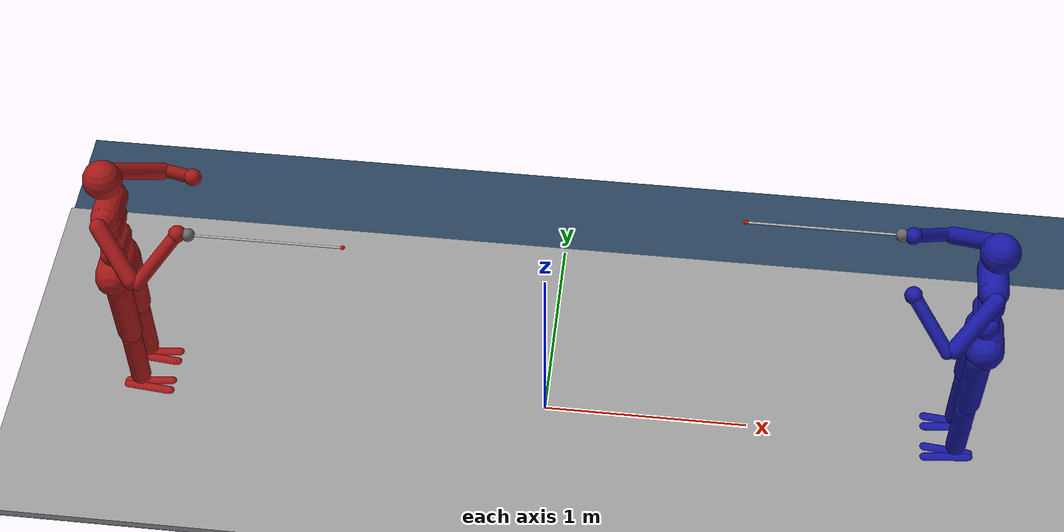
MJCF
<!-- Copyright 2021 DeepMind Technologies Limited. Modified for dual-agent fencing. -->

<mujoco model="Dual_Humanoid_Fencing">
  <option timestep="0.005"/>

  <visual>
    <map force="0.1" zfar="30"/>
    <rgba haze="0.15 0.25 0.35 1"/>
    <global offwidth="2560" offheight="1440" elevation="-20" azimuth="120"/>
  </visual>

  <statistic center="1.5 0 0.7"/> <!-- Center camera view between the two humanoids -->

  <asset>
    <texture type="skybox" builtin="gradient" rgb1=".3 .5 .7" rgb2="0 0 0" width="32" height="512"/>
    <texture name="body_A" type="cube" builtin="flat" mark="cross" width="128" height="128" rgb1="0.8 0.3 0.3" rgb2="0.8 0.3 0.3" markrgb="1 1 1"/> <!-- Red for A -->
    <material name="body_A_mat" texture="body_A" texuniform="true" rgba="0.8 0.3 .3 1"/>
    <texture name="body_B" type="cube" builtin="flat" mark="cross" width="128" height="128" rgb1="0.3 0.3 0.8" rgb2="0.3 0.3 0.8" markrgb="1 1 1"/> <!-- Blue for B -->
    <material name="body_B_mat" texture="body_B" texuniform="true" rgba="0.3 0.3 .8 1"/>

    <texture name="grid" type="2d" builtin="checker" width="512" height="512" rgb1=".1 .2 .3" rgb2=".2 .3 .4"/>
    <material name="grid" texture="grid" texrepeat="1 1" texuniform="true" reflectance=".2"/>
  </asset>

  <default>
    <motor ctrlrange="-1 1" ctrllimited="true"/>
    <!-- Shared shoulder joint settings for both fencers -->
    <default class="shoulder">
      <joint type="hinge" damping="1" stiffness="1" limited="true" range="-120 120"/>
    </default>
    <!-- Default class 'body_A' for Fencer A -->
    <default class="body_A">
      <!-- Fencer A Body Geoms -->
      <!-- Put body geoms in render group 0 to ensure visibility in viewer -->
      <geom type="capsule" condim="1" friction=".7" solimp=".9 .99 .003" solref=".015 1" material="body_A_mat" group="0"/>
      <default class="thigh"><geom size=".06"/></default>
      <default class="shin"><geom fromto="0 0 0 0 0 -.3"  size=".049"/></default>
      <default class="foot">
        <geom size=".027"/>
        <default class="foot1"><geom fromto="-.07 -.01 0 .14 -.03 0"/></default>
        <default class="foot2"><geom fromto="-.07 .01 0 .14  .03 0"/></default>
      </default>
      <default class="arm_upper"><geom size=".04"/></default>
      <default class="arm_lower"><geom size=".031"/></default>
      <default class="hand"><geom type="sphere" size=".04"/></default>
      <!-- Epee Blade: group="2" (for contact detection) -->
      <default class="epee_blade_geom">
        <geom type="capsule" size="0.005" rgba="0.8 0.8 0.8 1" mass="0.05" group="2" condim="6"/>
      </default>
      <default class="epee_guard_geom">
        <geom type="sphere" size="0.03" rgba="0.4 0.4 0.4 1" mass="0.02" group="2"/>
      </default>

      <!-- Joints (Shared joint parameters) -->
      <joint type="hinge" damping=".2" stiffness="1" armature=".01" limited="true" solimplimit="0 .99 .01"/>
      <default class="joint_big">
        <joint damping="5" stiffness="10"/>
        <default class="hip_x"><joint range="-30 10"/></default>
        <default class="hip_z"><joint range="-60 35"/></default>
        <default class="hip_y"><joint axis="0 1 0" range="-150 20"/></default>
        <default class="joint_big_stiff"><joint stiffness="20"/></default>
      </default>
      <default class="knee"><joint pos="0 0 .02" axis="0 -1 0" range="-160 2"/></default>
      <default class="ankle"><joint range="-50 50"/></default>
    </default>

    <!-- Default class 'body_B' for Fencer B -->
    <default class="body_B">
      <!-- Fencer B Body Geoms -->
      <!-- Put body geoms in render group 0 to ensure visibility in viewer -->
      <geom type="capsule" condim="1" friction=".7" solimp=".9 .99 .003" solref=".015 1" material="body_B_mat" group="0"/>
      <default class="thigh_B"><geom size=".06"/></default>
      <default class="shin_B"><geom fromto="0 0 0 0 0 -.3"  size=".049"/></default>
      <default class="foot_B">
        <geom size=".027"/>
        <default class="foot1_B"><geom fromto="-.07 -.01 0 .14 -.03 0"/></default>
        <default class="foot2_B"><geom fromto="-.07 .01 0 .14  .03 0"/></default>
      </default>
      <default class="arm_upper_B"><geom size=".04"/></default>
      <default class="arm_lower_B"><geom size=".031"/></default>
      <default class="hand_B"><geom type="sphere" size=".04"/></default>
      <!-- Epee Blade: group="2" (for contact detection) -->
      <default class="epee_blade_geom_B">
        <geom type="capsule" size="0.005" rgba="0.8 0.8 0.8 1" mass="0.05" group="2" condim="6"/>
      </default>
      <default class="epee_guard_geom_B">
        <geom type="sphere" size="0.03" rgba="0.4 0.4 0.4 1" mass="0.02" group="2"/>
      </default>
    </default>
  </default>

  <worldbody>
    <geom name="floor" size="0 0 .05" type="plane" material="grid" condim="3"/>
    <!-- Visual strip (14m x 2m) centered at origin; non-colliding -->
    <geom name="piste" type="box" size="7 1 0.02" pos="0 0 0.02" rgba="0.6 0.6 0.6 1" contype="0" conaffinity="0"/>
    <light name="spotlight" mode="targetbodycom" target="torso" diffuse=".8 .8 .8" specular="0.3 0.3 0.3" pos="0 -6 4" cutoff="30"/>
    <light name="top" pos="1.5 0 2" mode="trackcom"/>

    <!-- FENCER A (Original Humanoid - uses class="body_A") -->
    <body name="torso" pos="-2 0 1.282" childclass="body_A">
      <camera name="back_A" pos="-3 0 1" xyaxes="0 -1 0 1 0 2" mode="trackcom"/>
      <camera name="side_A" pos="0 -3 1" xyaxes="1 0 0 0 1 2" mode="trackcom"/>
      <freejoint name="root"/>
      <geom name="torso" fromto="0 -.07 0 0 .07 0" size=".07"/>
      <geom name="waist_upper" fromto="-.01 -.06 -.12 -.01 .06 -.12" size=".06"/>
      <body name="head" pos="0 0 .19">
        <geom name="head" type="sphere" size=".09"/>
        <camera name="egocentric_A" pos=".09 0 0" xyaxes="0 -1 0 .1 0 1" fovy="80"/>
      </body>
      <body name="waist_lower" pos="-.01 0 -.26">
        <geom name="waist_lower" fromto="0 -.06 0 0 .06 0" size=".06"/>
        <joint name="abdomen_z" pos="0 0 .065" axis="0 0 1" range="-45 45" class="joint_big_stiff"/>
        <joint name="abdomen_y" pos="0 0 .065" axis="0 1 0" range="-75 30" class="joint_big"/>
        <body name="pelvis" pos="0 0 -.165">
          <joint name="abdomen_x" pos="0 0 .1" axis="1 0 0" range="-35 35" class="joint_big"/>
          <geom name="butt" fromto="-.02 -.07 0 -.02 .07 0" size=".09"/>
          <body name="thigh_right" pos="0 -.1 -.04">
            <joint name="hip_x_right" axis="1 0 0" class="hip_x"/>
            <joint name="hip_z_right" axis="0 0 1" class="hip_z"/>
            <joint name="hip_y_right" class="hip_y"/>
            <geom name="thigh_right" fromto="0 0 0 0 .01 -.34" class="thigh"/>
            <body name="shin_right" pos="0 .01 -.4">
              <joint name="knee_right" class="knee"/>
              <geom name="shin_right" class="shin"/>
              <body name="foot_right" pos="0 0 -.39">
                <joint name="ankle_y_right" pos="0 0 .08" axis="0 1 0" stiffness="6" range="-50 50"/>
                <joint name="ankle_x_right" pos="0 0 .04" stiffness="3" range="-50 50" axis="1 0 .5"/>
                <geom name="foot1_right" class="foot1"/>
                <geom name="foot2_right" class="foot2"/>
              </body>
            </body>
          </body>
          <body name="thigh_left" pos="0 .1 -.04">
            <joint name="hip_x_left" axis="-1 0 0" class="hip_x"/>
            <joint name="hip_z_left" axis="0 0 -1" class="hip_z"/>
            <joint name="hip_y_left" class="hip_y"/>
            <geom name="thigh_left" fromto="0 0 0 0 -.01 -.34" class="thigh"/>
            <body name="shin_left" pos="0 -.01 -.4">
              <joint name="knee_left" class="knee"/>
              <geom name="shin_left" fromto="0 0 0 0 0 -.3" class="shin"/>
              <body name="foot_left" pos="0 0 -.39">
                <joint name="ankle_y_left" pos="0 0 .08" axis="0 1 0" stiffness="6" range="-50 50"/>
                <joint name="ankle_x_left" pos="0 0 .04" stiffness="3" range="-50 50" axis="-1 0 -.5"/>
                <geom name="foot1_left" class="foot1"/>
                <geom name="foot2_left" class="foot2"/>
              </body>
            </body>
          </body>
        </body>
      </body>
      <body name="upper_arm_right" pos="0 -.17 .06">
        <joint name="shoulder1_right" axis="2 1 1"  class="shoulder"/>
        <joint name="shoulder2_right" axis="0 -1 1" class="shoulder"/>
        <geom name="upper_arm_right" fromto="0 0 0 .16 -.16 -.16" class="arm_upper"/>
        <body name="lower_arm_right" pos=".18 -.18 -.18">
          <joint name="elbow_right" axis="0 -1 1" range="-100 50" stiffness="0"/>
          <geom name="lower_arm_right" fromto=".01 .01 .01 .17 .17 .17" class="arm_lower"/>
          <body name="hand_right" pos=".18 .18 .18">
            <geom name="hand_right" zaxis="1 1 1" class="hand"/>
            <!-- Fencing epee (attached to right hand) -->
            <body name="epee" pos="0.05 0 0" quat="1 0 0 0">
              <!-- Blade geometry (group="2" for contact detection) -->
              <geom name="epee_blade" class="epee_blade_geom" fromto="0 0 0 0.7 0 0"/>
              <!-- Guard geometry (group="2") -->
              <geom name="epee_guard" class="epee_guard_geom" pos="0 0 0"/>
              <!-- Add a site at the tip of the blade (for sensing location) -->
              <site name="epee_tip" pos="0.7 0 0" size="0.01" rgba="1 0 0 1"/>
            </body>
          </body>
        </body>
      </body>
      <body name="upper_arm_left" pos="0 .17 .06">
        <joint name="shoulder1_left" axis="-2 1 -1" class="shoulder"/>
        <joint name="shoulder2_left" axis="0 -1 -1"  class="shoulder"/>
        <geom name="upper_arm_left" fromto="0 0 0 .16 .16 -.16" class="arm_upper"/>
        <body name="lower_arm_left" pos=".18 .18 -.18">
          <joint name="elbow_left" axis="0 -1 -1" range="-100 50" stiffness="0"/>
          <geom name="lower_arm_left" fromto=".01 -.01 .01 .17 -.17 .17" class="arm_lower"/>
          <body name="hand_left" pos=".18 -.18 .18">
            <geom name="hand_left" zaxis="1 -1 1" class="hand"/>
          </body>
        </body>
      </body>
    </body>

    <!-- FENCER B (Opponent Humanoid - uses class="body_B") -->
    <!-- Placed 3 units away and rotated 180 degrees (quat="0 0 1 0") -->
    <!-- Rotate 180° about z so Fencer B faces A but stays upright -->
    <body name="torso_B" pos="2 0 1.282" quat="0 0 0 1" childclass="body_B">
      <camera name="back_B" pos="-3 0 1" xyaxes="0 -1 0 1 0 2" mode="trackcom"/>
      <camera name="side_B" pos="0 -3 1" xyaxes="1 0 0 0 1 2" mode="trackcom"/>
      <freejoint name="root_B"/>
      <geom name="torso_B" fromto="0 -.07 0 0 .07 0" size=".07"/>
      <geom name="waist_upper_B" fromto="-.01 -.06 -.12 -.01 .06 -.12" size=".06"/>
      <body name="head_B" pos="0 0 .19">
        <geom name="head_B" type="sphere" size=".09"/>
        <camera name="egocentric_B" pos=".09 0 0" xyaxes="0 -1 0 .1 0 1" fovy="80"/>
      </body>
      <body name="waist_lower_B" pos="-.01 0 -.26">
        <geom name="waist_lower_B" fromto="0 -.06 0 0 .06 0" size=".06"/>
        <joint name="abdomen_z_B" pos="0 0 .065" axis="0 0 1" range="-45 45" class="joint_big_stiff"/>
        <joint name="abdomen_y_B" pos="0 0 .065" axis="0 1 0" range="-75 30" class="joint_big"/>
        <body name="pelvis_B" pos="0 0 -.165">
          <joint name="abdomen_x_B" pos="0 0 .1" axis="1 0 0" range="-35 35" class="joint_big"/>
          <geom name="butt_B" fromto="-.02 -.07 0 -.02 .07 0" size=".09"/>
          <body name="thigh_right_B" pos="0 -.1 -.04">
            <joint name="hip_x_right_B" axis="1 0 0" class="hip_x"/>
            <joint name="hip_z_right_B" axis="0 0 1" class="hip_z"/>
            <joint name="hip_y_right_B" class="hip_y"/>
            <geom name="thigh_right_B" fromto="0 0 0 0 .01 -.34" class="thigh_B"/>
            <body name="shin_right_B" pos="0 .01 -.4">
              <joint name="knee_right_B" class="knee"/>
              <geom name="shin_right_B" class="shin_B"/>
              <body name="foot_right_B" pos="0 0 -.39">
                <joint name="ankle_y_right_B" pos="0 0 .08" axis="0 1 0" stiffness="6" range="-50 50"/>
                <joint name="ankle_x_right_B" pos="0 0 .04" stiffness="3" range="-50 50" axis="1 0 .5"/>
                <geom name="foot1_right_B" class="foot1_B"/>
                <geom name="foot2_right_B" class="foot2_B"/>
              </body>
            </body>
          </body>
          <body name="thigh_left_B" pos="0 .1 -.04">
            <joint name="hip_x_left_B" axis="-1 0 0" class="hip_x"/>
            <joint name="hip_z_left_B" axis="0 0 -1" class="hip_z"/>
            <joint name="hip_y_left_B" class="hip_y"/>
            <geom name="thigh_left_B" fromto="0 0 0 0 -.01 -.34" class="thigh_B"/>
            <body name="shin_left_B" pos="0 -.01 -.4">
              <joint name="knee_left_B" class="knee"/>
              <geom name="shin_left_B" fromto="0 0 0 0 0 -.3" class="shin_B"/>
              <body name="foot_left_B" pos="0 0 -.39">
                <joint name="ankle_y_left_B" pos="0 0 .08" axis="0 1 0" stiffness="6" range="-50 50"/>
                <joint name="ankle_x_left_B" pos="0 0 .04" stiffness="3" range="-50 50" axis="-1 0 -.5"/>
                <geom name="foot1_left_B" class="foot1_B"/>
                <geom name="foot2_left_B" class="foot2_B"/>
              </body>
            </body>
          </body>
        </body>
      </body>
      <body name="upper_arm_right_B" pos="0 -.17 .06">
        <joint name="shoulder1_right_B" axis="2 1 1"  class="shoulder"/>
        <joint name="shoulder2_right_B" axis="0 -1 1" class="shoulder"/>
        <geom name="upper_arm_right_B" fromto="0 0 0 .16 -.16 -.16" class="arm_upper_B"/>
        <body name="lower_arm_right_B" pos=".18 -.18 -.18">
          <joint name="elbow_right_B" axis="0 -1 1" range="-100 50" stiffness="0"/>
          <geom name="lower_arm_right_B" fromto=".01 .01 .01 .17 .17 .17" class="arm_lower_B"/>
          <body name="hand_right_B" pos=".18 .18 .18">
            <geom name="hand_right_B" zaxis="1 1 1" class="hand_B"/>
            <!-- Fencing epee (attached to right hand) -->
            <body name="epee_B" pos="0.05 0 0" quat="1 0 0 0">
              <!-- Blade geometry (group="2") -->
              <geom name="epee_blade_B" class="epee_blade_geom_B" fromto="0 0 0 0.7 0 0"/>
              <!-- Guard geometry (group="2") -->
              <geom name="epee_guard_B" class="epee_guard_geom_B" pos="0 0 0"/>
              <!-- Add a site at the tip of the blade (for sensing location) -->
              <site name="epee_tip_B" pos="0.7 0 0" size="0.01" rgba="1 0 0 1"/>
            </body>
          </body>
        </body>
      </body>
      <body name="upper_arm_left_B" pos="0 .17 .06">
        <joint name="shoulder1_left_B" axis="-2 1 -1" class="shoulder"/>
        <joint name="shoulder2_left_B" axis="0 -1 -1"  class="shoulder"/>
        <geom name="upper_arm_left_B" fromto="0 0 0 .16 .16 -.16" class="arm_upper_B"/>
        <body name="lower_arm_left_B" pos=".18 .18 -.18">
          <joint name="elbow_left_B" axis="0 -1 -1" range="-100 50" stiffness="0"/>
          <geom name="lower_arm_left_B" fromto=".01 -.01 .01 .17 -.17 .17" class="arm_lower_B"/>
          <body name="hand_left_B" pos=".18 -.18 .18">
            <geom name="hand_left_B" zaxis="1 -1 1" class="hand_B"/>
          </body>
        </body>
      </body>
    </body>
  </worldbody>

  <!-- CONTACT EXCLUSIONS -->
  <contact>
    <!-- Exclude contacts within Fencer A's waist/thigh -->
    <exclude body1="waist_lower" body2="thigh_right"/>
    <exclude body1="waist_lower" body2="thigh_left"/>
    <!-- Exclude contacts within Fencer B's waist/thigh -->
    <exclude body1="waist_lower_B" body2="thigh_right_B"/>
    <exclude body1="waist_lower_B" body2="thigh_left_B"/>
    <!-- Exclude contacts between Fencer A's epee and Fencer A's body -->
    <exclude body1="epee" body2="torso"/>
    <exclude body1="epee" body2="head"/>
    <exclude body1="epee" body2="waist_lower"/>
    <exclude body1="epee" body2="pelvis"/>
    <exclude body1="epee" body2="thigh_right"/>
    <exclude body1="epee" body2="thigh_left"/>
    <exclude body1="epee" body2="upper_arm_right"/>
    <exclude body1="epee" body2="upper_arm_left"/>
  </contact>

  <tendon>
    <!-- Fencer A Tendons -->
    <fixed name="hamstring_right" limited="true" range="-0.3 2">
      <joint joint="hip_y_right" coef=".5"/>
      <joint joint="knee_right" coef="-.5"/>
    </fixed>
    <fixed name="hamstring_left" limited="true" range="-0.3 2">
      <joint joint="hip_y_left" coef=".5"/>
      <joint joint="knee_left" coef="-.5"/>
    </fixed>
    <!-- Fencer B Tendons -->
    <fixed name="hamstring_right_B" limited="true" range="-0.3 2">
      <joint joint="hip_y_right_B" coef=".5"/>
      <joint joint="knee_right_B" coef="-.5"/>
    </fixed>
    <fixed name="hamstring_left_B" limited="true" range="-0.3 2">
      <joint joint="hip_y_left_B" coef=".5"/>
      <joint joint="knee_left_B" coef="-.5"/>
    </fixed>
  </tendon>

  <actuator>
    <!-- Fencer A Actuators -->
    <motor name="abdomen_z"       gear="40"  joint="abdomen_z"/>
    <motor name="abdomen_y"       gear="40"  joint="abdomen_y"/>
    <motor name="abdomen_x"       gear="40"  joint="abdomen_x"/>
    <motor name="hip_x_right"     gear="40"  joint="hip_x_right"/>
    <motor name="hip_z_right"     gear="40"  joint="hip_z_right"/>
    <motor name="hip_y_right"     gear="120" joint="hip_y_right"/>
    <motor name="knee_right"      gear="80"  joint="knee_right"/>
    <motor name="ankle_y_right"   gear="20"  joint="ankle_y_right"/>
    <motor name="ankle_x_right"   gear="20"  joint="ankle_x_right"/>
    <motor name="hip_x_left"      gear="40"  joint="hip_x_left"/>
    <motor name="hip_z_left"      gear="40"  joint="hip_z_left"/>
    <motor name="hip_y_left"      gear="120" joint="hip_y_left"/>
    <motor name="knee_left"       gear="80"  joint="knee_left"/>
    <motor name="ankle_y_left"    gear="20"  joint="ankle_y_left"/>
    <motor name="ankle_x_left"    gear="20"  joint="ankle_x_left"/>
    <motor name="shoulder1_right" gear="20"  joint="shoulder1_right"/>
    <motor name="shoulder2_right" gear="20"  joint="shoulder2_right"/>
    <motor name="elbow_right"     gear="40"  joint="elbow_right"/>
    <motor name="shoulder1_left"  gear="20"  joint="shoulder1_left"/>
    <motor name="shoulder2_left"  gear="20"  joint="shoulder2_left"/>
    <motor name="elbow_left"      gear="40"  joint="elbow_left"/>

    <!-- Fencer B Actuators -->
    <motor name="abdomen_z_B"       gear="40"  joint="abdomen_z_B"/>
    <motor name="abdomen_y_B"       gear="40"  joint="abdomen_y_B"/>
    <motor name="abdomen_x_B"       gear="40"  joint="abdomen_x_B"/>
    <motor name="hip_x_right_B"     gear="40"  joint="hip_x_right_B"/>
    <motor name="hip_z_right_B"     gear="40"  joint="hip_z_right_B"/>
    <motor name="hip_y_right_B"     gear="120" joint="hip_y_right_B"/>
    <motor name="knee_right_B"      gear="80"  joint="knee_right_B"/>
    <motor name="ankle_y_right_B"   gear="20"  joint="ankle_y_right_B"/>
    <motor name="ankle_x_right_B"   gear="20"  joint="ankle_x_right_B"/>
    <motor name="hip_x_left_B"      gear="40"  joint="hip_x_left_B"/>
    <motor name="hip_z_left_B"      gear="40"  joint="hip_z_left_B"/>
    <motor name="hip_y_left_B"      gear="120" joint="hip_y_left_B"/>
    <motor name="knee_left_B"       gear="80"  joint="knee_left_B"/>
    <motor name="ankle_y_left_B"    gear="20"  joint="ankle_y_left_B"/>
    <motor name="ankle_x_left_B"    gear="20"  joint="ankle_x_left_B"/>
    <motor name="shoulder1_right_B" gear="20"  joint="shoulder1_right_B"/>
    <motor name="shoulder2_right_B" gear="20"  joint="shoulder2_right_B"/>
    <motor name="elbow_right_B"     gear="40"  joint="elbow_right_B"/>
    <motor name="shoulder1_left_B"  gear="20"  joint="shoulder1_left_B"/>
    <motor name="shoulder2_left_B"  gear="20"  joint="shoulder2_left_B"/>
    <motor name="elbow_left_B"      gear="40"  joint="elbow_left_B"/>
  </actuator>

  <sensor>
    <!-- Fencer A's epee tip touch sensor (for debug/tracking only) -->
    <touch name="epee_tip_touch_A" site="epee_tip"/>
    <!-- Fencer B's epee tip touch sensor (for debug/tracking only) -->
    <touch name="epee_tip_touch_B" site="epee_tip_B"/>

    <!--
      THE CRITICAL SCORING SENSORS:
      We use a custom contact sensor here to report force ONLY between
      an epee blade (geom group 2) and an opposing body part (geom group 3 or 4).
    -->

    <!-- Hit detection: Fencer A (epee: group 2) hits Fencer B (body: group 4) -->
    <contact name="hit_A_on_B"
             geom1="epee_blade"
             geom2="torso_B"/>

    <!-- Hit detection: Fencer B (epee: group 2) hits Fencer A (body: group 3) -->
    <contact name="hit_B_on_A"
             geom1="epee_blade_B"
             geom2="torso"/>

  </sensor>
</mujoco>
